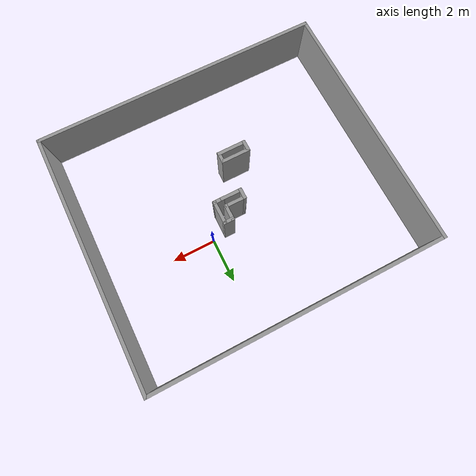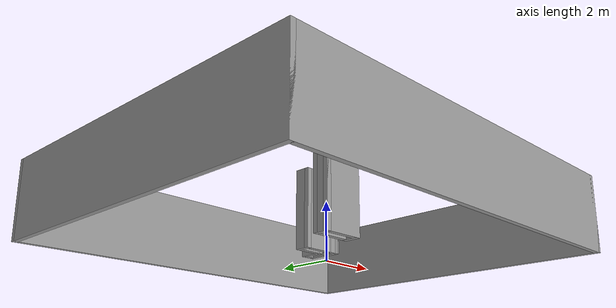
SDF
<?xml version='1.0'?>
<sdf version='1.7'>
  <model name='bugWorld'>
    <pose>-1.66223 -1.13302 0 0 -0 0</pose>
    <link name='Wall_0'>
      <collision name='Wall_0_Collision'>
        <geometry>
          <box>
            <size>1.33459 0.15 2.5</size>
          </box>
        </geometry>
        <pose>0 0 1.25 0 -0 0</pose>
      </collision>
      <visual name='Wall_0_Visual'>
        <pose>0 0 1.25 0 -0 0</pose>
        <geometry>
          <box>
            <size>1.33459 0.15 2.5</size>
          </box>
        </geometry>
        <material>
          <script>
            <uri>file://media/materials/scripts/gazebo.material</uri>
            <name>Gazebo/Grey</name>
          </script>
          <ambient>1 1 1 1</ambient>
        </material>
        <meta>
          <layer>0</layer>
        </meta>
      </visual>
      <pose>-0.668477 -1.26291 0 0 -0 0</pose>
    </link>
    <link name='Wall_21'>
      <collision name='Wall_21_Collision'>
        <geometry>
          <box>
            <size>0.530418 0.15 2.5</size>
          </box>
        </geometry>
        <pose>0 0 1.25 0 -0 0</pose>
      </collision>
      <visual name='Wall_21_Visual'>
        <pose>0 0 1.25 0 -0 0</pose>
        <geometry>
          <box>
            <size>0.530418 0.15 2.5</size>
          </box>
        </geometry>
        <material>
          <script>
            <uri>file://media/materials/scripts/gazebo.material</uri>
            <name>Gazebo/Grey</name>
          </script>
          <ambient>1 1 1 1</ambient>
        </material>
        <meta>
          <layer>0</layer>
        </meta>
      </visual>
      <pose>-0.076181 -1.45312 0 0 -0 -1.5708</pose>
    </link>
    <link name='Wall_23'>
      <collision name='Wall_23_Collision'>
        <geometry>
          <box>
            <size>0.530418 0.15 2.5</size>
          </box>
        </geometry>
        <pose>0 0 1.25 0 -0 0</pose>
      </collision>
      <visual name='Wall_23_Visual'>
        <pose>0 0 1.25 0 -0 0</pose>
        <geometry>
          <box>
            <size>0.530418 0.15 2.5</size>
          </box>
        </geometry>
        <material>
          <script>
            <uri>file://media/materials/scripts/gazebo.material</uri>
            <name>Gazebo/Grey</name>
          </script>
          <ambient>1 1 1 1</ambient>
        </material>
        <meta>
          <layer>0</layer>
        </meta>
      </visual>
      <pose>-1.26077 -1.45312 0 0 -0 -1.5708</pose>
    </link>
    <link name='Wall_37'>
      <collision name='Wall_37_Collision'>
        <geometry>
          <box>
            <size>1 0.15 2.5</size>
          </box>
        </geometry>
        <pose>0 0 1.25 0 -0 0</pose>
      </collision>
      <visual name='Wall_37_Visual'>
        <pose>0 0 1.25 0 -0 0</pose>
        <geometry>
          <box>
            <size>1 0.15 2.5</size>
          </box>
        </geometry>
        <material>
          <script>
            <uri>file://media/materials/scripts/gazebo.material</uri>
            <name>Gazebo/Grey</name>
          </script>
          <ambient>1 1 1 1</ambient>
        </material>
        <meta>
          <layer>0</layer>
        </meta>
      </visual>
      <pose>0.273482 0.197796 0 0 -0 0</pose>
    </link>
    <link name='Wall_39'>
      <collision name='Wall_39_Collision'>
        <geometry>
          <box>
            <size>0.5 0.15 2.5</size>
          </box>
        </geometry>
        <pose>0 0 1.25 0 -0 0</pose>
      </collision>
      <visual name='Wall_39_Visual'>
        <pose>0 0 1.25 0 -0 0</pose>
        <geometry>
          <box>
            <size>0.5 0.15 2.5</size>
          </box>
        </geometry>
        <material>
          <script>
            <uri>file://media/materials/scripts/gazebo.material</uri>
            <name>Gazebo/Grey</name>
          </script>
          <ambient>1 1 1 1</ambient>
        </material>
        <meta>
          <layer>0</layer>
        </meta>
      </visual>
      <pose>-0.151518 0.372796 0 0 -0 1.5708</pose>
    </link>
    <link name='Wall_40'>
      <collision name='Wall_40_Collision'>
        <geometry>
          <box>
            <size>1 0.15 2.5</size>
          </box>
        </geometry>
        <pose>0 0 1.25 0 -0 0</pose>
      </collision>
      <visual name='Wall_40_Visual'>
        <pose>0 0 1.25 0 -0 0</pose>
        <geometry>
          <box>
            <size>1 0.15 2.5</size>
          </box>
        </geometry>
        <material>
          <script>
            <uri>file://media/materials/scripts/gazebo.material</uri>
            <name>Gazebo/Grey</name>
          </script>
          <ambient>1 1 1 1</ambient>
        </material>
        <meta>
          <layer>0</layer>
        </meta>
      </visual>
      <pose>0.273482 0.547796 0 0 -0 0</pose>
    </link>
    <link name='Wall_41'>
      <collision name='Wall_41_Collision'>
        <geometry>
          <box>
            <size>0.75 0.15 2.5</size>
          </box>
        </geometry>
        <pose>0 0 1.25 0 -0 0</pose>
      </collision>
      <visual name='Wall_41_Visual'>
        <pose>0 0 1.25 0 -0 0</pose>
        <geometry>
          <box>
            <size>0.75 0.15 2.5</size>
          </box>
        </geometry>
        <material>
          <script>
            <uri>file://media/materials/scripts/gazebo.material</uri>
            <name>Gazebo/Grey</name>
          </script>
          <ambient>1 1 1 1</ambient>
        </material>
        <meta>
          <layer>0</layer>
        </meta>
      </visual>
      <pose>0.698482 0.847796 0 0 -0 1.5708</pose>
    </link>
    <link name='Wall_42'>
      <collision name='Wall_42_Collision'>
        <geometry>
          <box>
            <size>0.5 0.15 2.5</size>
          </box>
        </geometry>
        <pose>0 0 1.25 0 -0 0</pose>
      </collision>
      <visual name='Wall_42_Visual'>
        <pose>0 0 1.25 0 -0 0</pose>
        <geometry>
          <box>
            <size>0.5 0.15 2.5</size>
          </box>
        </geometry>
        <material>
          <script>
            <uri>file://media/materials/scripts/gazebo.material</uri>
            <name>Gazebo/Grey</name>
          </script>
          <ambient>1 1 1 1</ambient>
        </material>
        <meta>
          <layer>0</layer>
        </meta>
      </visual>
      <pose>0.873482 1.1478 0 0 -0 0</pose>
    </link>
    <link name='Wall_44'>
      <collision name='Wall_44_Collision'>
        <geometry>
          <box>
            <size>0.5 0.15 2.5</size>
          </box>
        </geometry>
        <pose>0 0 1.25 0 -0 0</pose>
      </collision>
      <visual name='Wall_44_Visual'>
        <pose>0 0 1.25 0 -0 0</pose>
        <geometry>
          <box>
            <size>0.5 0.15 2.5</size>
          </box>
        </geometry>
        <material>
          <script>
            <uri>file://media/materials/scripts/gazebo.material</uri>
            <name>Gazebo/Grey</name>
          </script>
          <ambient>1 1 1 1</ambient>
        </material>
        <meta>
          <layer>0</layer>
        </meta>
      </visual>
      <pose>0.873482 0.197796 0 0 -0 0</pose>
    </link>
    <link name='Wall_45'>
      <collision name='Wall_45_Collision'>
        <geometry>
          <box>
            <size>1.1 0.15 2.5</size>
          </box>
        </geometry>
        <pose>0 0 1.25 0 -0 0</pose>
      </collision>
      <visual name='Wall_45_Visual'>
        <pose>0 0 1.25 0 -0 0</pose>
        <geometry>
          <box>
            <size>1.1 0.15 2.5</size>
          </box>
        </geometry>
        <material>
          <script>
            <uri>file://media/materials/scripts/gazebo.material</uri>
            <name>Gazebo/Grey</name>
          </script>
          <ambient>1 1 1 1</ambient>
        </material>
        <meta>
          <layer>0</layer>
        </meta>
      </visual>
      <pose>1.04848 0.672796 0 0 -0 1.5708</pose>
    </link>
    <link name='Wall_5'>
      <collision name='Wall_5_Collision'>
        <geometry>
          <box>
            <size>1.33459 0.15 2.5</size>
          </box>
        </geometry>
        <pose>0 0 1.25 0 -0 0</pose>
      </collision>
      <visual name='Wall_5_Visual'>
        <pose>0 0 1.25 0 -0 0</pose>
        <geometry>
          <box>
            <size>1.33459 0.15 2.5</size>
          </box>
        </geometry>
        <material>
          <script>
            <uri>file://media/materials/scripts/gazebo.material</uri>
            <name>Gazebo/Grey</name>
          </script>
          <ambient>1 1 1 1</ambient>
        </material>
        <meta>
          <layer>0</layer>
        </meta>
      </visual>
      <pose>-0.668477 -1.64333 0 0 -0 3.14159</pose>
    </link>
    <link name='Wall_52'>
      <collision name='Wall_52_Collision'>
        <geometry>
          <box>
            <size>11.5 0.15 2.5</size>
          </box>
        </geometry>
        <pose>0 0 1.25 0 -0 0</pose>
      </collision>
      <visual name='Wall_52_Visual'>
        <pose>0 0 1.25 0 -0 0</pose>
        <geometry>
          <box>
            <size>11.5 0.15 2.5</size>
          </box>
        </geometry>
        <material>
          <script>
            <uri>file://media/materials/scripts/gazebo.material</uri>
            <name>Gazebo/Grey</name>
          </script>
          <ambient>1 1 1 1</ambient>
        </material>
        <meta>
          <layer>0</layer>
        </meta>
      </visual>
      <pose>-6.55 -0 0 0 -0 -1.5708</pose>
    </link>
    <link name='Wall_53'>
      <collision name='Wall_53_Collision'>
        <geometry>
          <box>
            <size>13.25 0.15 2.5</size>
          </box>
        </geometry>
        <pose>0 0 1.25 0 -0 0</pose>
      </collision>
      <visual name='Wall_53_Visual'>
        <pose>0 0 1.25 0 -0 0</pose>
        <geometry>
          <box>
            <size>13.25 0.15 2.5</size>
          </box>
        </geometry>
        <material>
          <script>
            <uri>file://media/materials/scripts/gazebo.material</uri>
            <name>Gazebo/Grey</name>
          </script>
          <ambient>1 1 1 1</ambient>
        </material>
        <meta>
          <layer>0</layer>
        </meta>
      </visual>
      <pose>0 -5.675 0 0 -0 0</pose>
    </link>
    <link name='Wall_54'>
      <collision name='Wall_54_Collision'>
        <geometry>
          <box>
            <size>11.5 0.15 2.5</size>
          </box>
        </geometry>
        <pose>0 0 1.25 0 -0 0</pose>
      </collision>
      <visual name='Wall_54_Visual'>
        <pose>0 0 1.25 0 -0 0</pose>
        <geometry>
          <box>
            <size>11.5 0.15 2.5</size>
          </box>
        </geometry>
        <material>
          <script>
            <uri>file://media/materials/scripts/gazebo.material</uri>
            <name>Gazebo/Grey</name>
          </script>
          <ambient>1 1 1 1</ambient>
        </material>
        <meta>
          <layer>0</layer>
        </meta>
      </visual>
      <pose>6.55 -0 0 0 -0 1.5708</pose>
    </link>
    <link name='Wall_55'>
      <collision name='Wall_55_Collision'>
        <geometry>
          <box>
            <size>13.25 0.15 2.5</size>
          </box>
        </geometry>
        <pose>0 0 1.25 0 -0 0</pose>
      </collision>
      <visual name='Wall_55_Visual'>
        <pose>0 0 1.25 0 -0 0</pose>
        <geometry>
          <box>
            <size>13.25 0.15 2.5</size>
          </box>
        </geometry>
        <material>
          <script>
            <uri>file://media/materials/scripts/gazebo.material</uri>
            <name>Gazebo/Grey</name>
          </script>
          <ambient>1 1 1 1</ambient>
        </material>
        <meta>
          <layer>0</layer>
        </meta>
      </visual>
      <pose>0 5.675 0 0 -0 3.14159</pose>
    </link>
    <static>1</static>
  </model>
</sdf>
